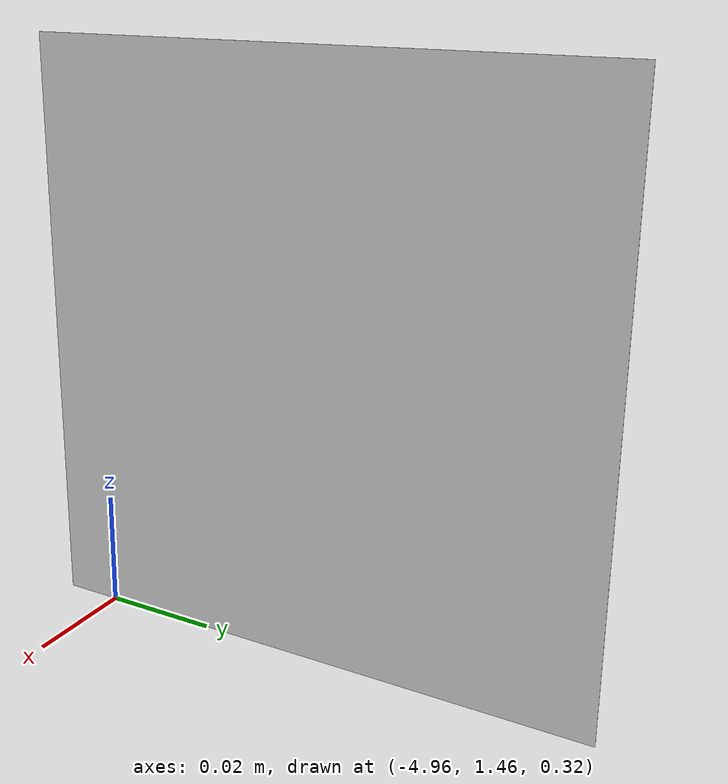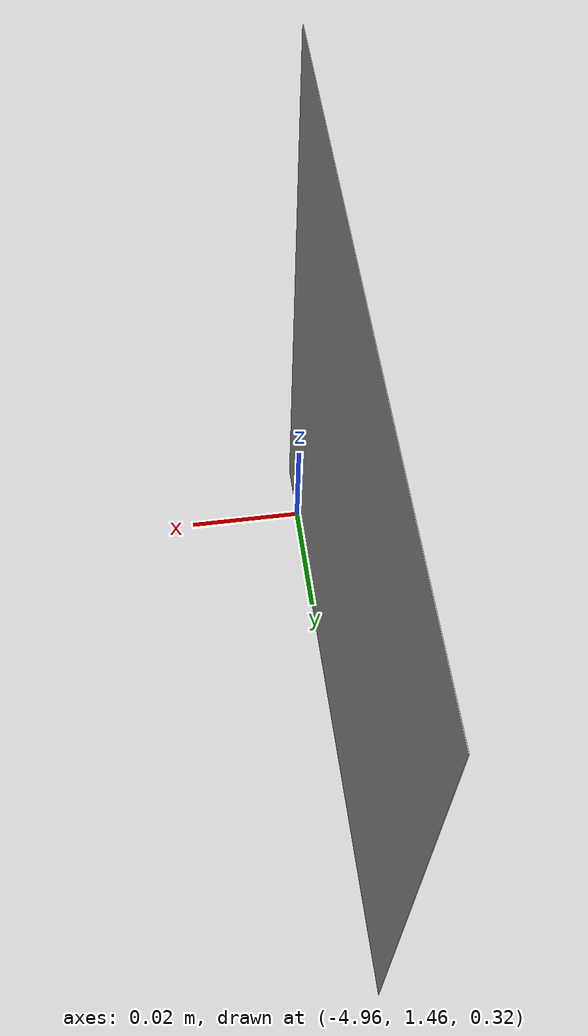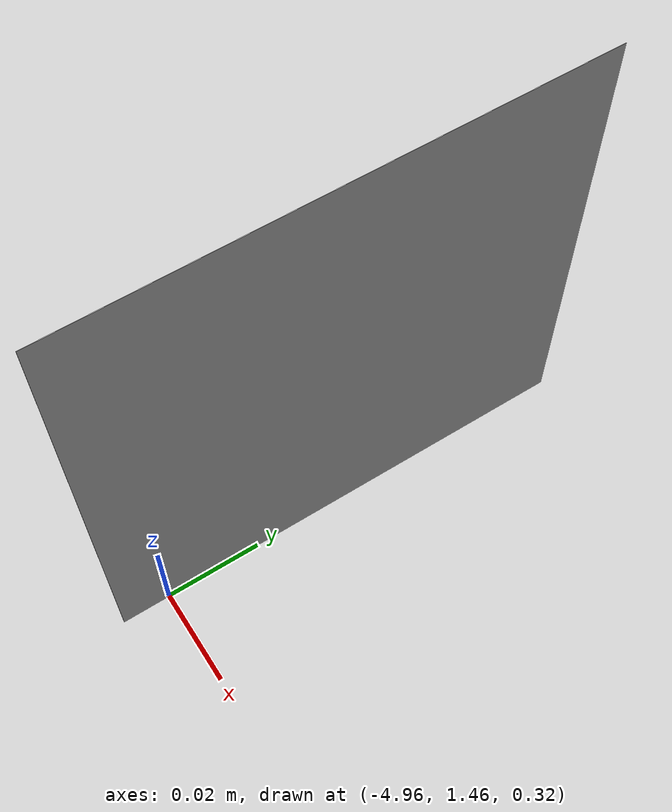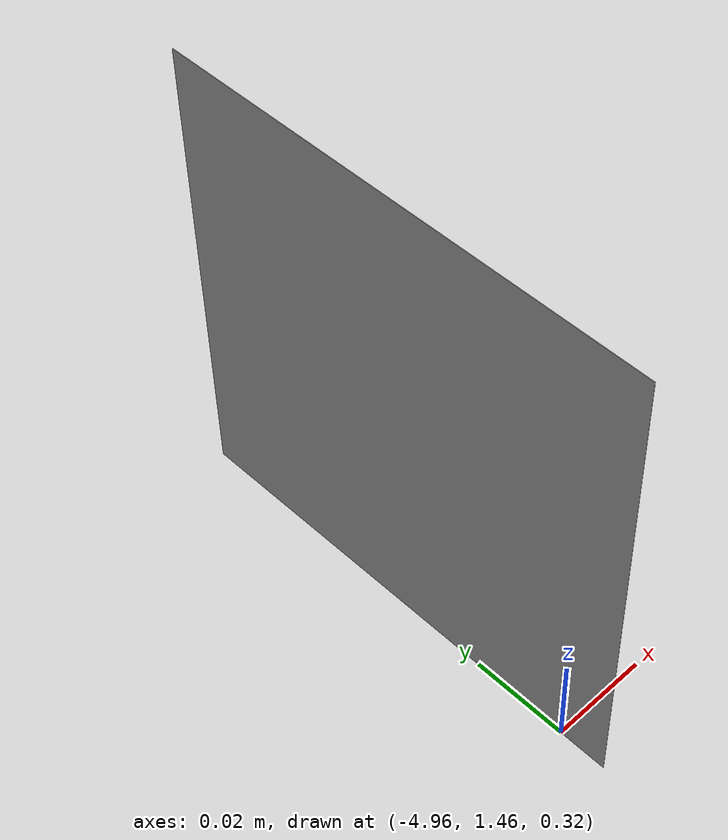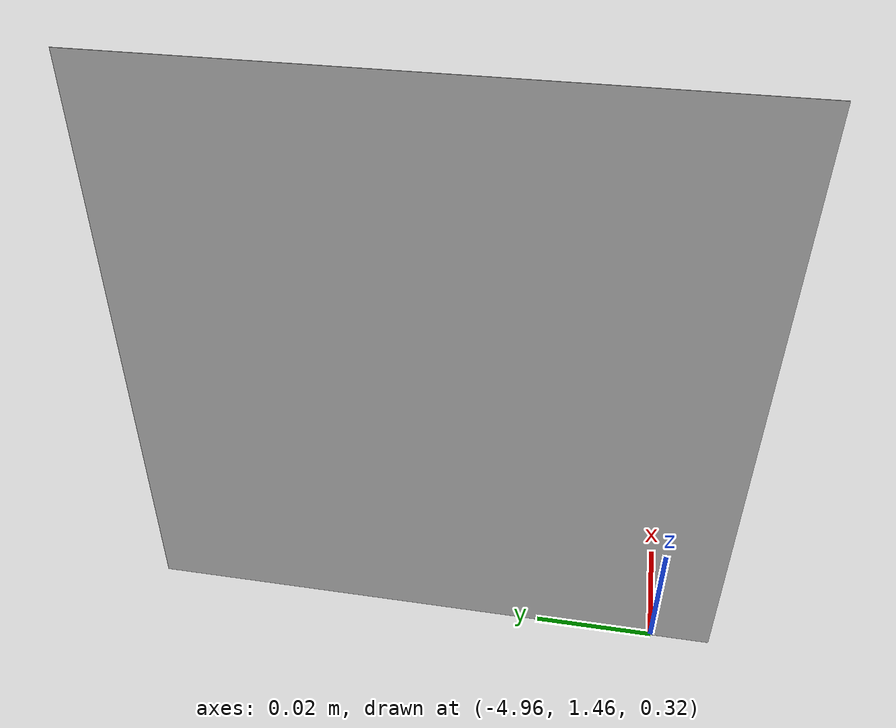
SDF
<sdf version="1.6">
  <world name="empty">
    <physics name="1ms" type="ignored">
      <max_step_size>0.001</max_step_size>
      <real_time_factor>1.0</real_time_factor>
    </physics>
    <plugin
      filename="gz-sim-physics-system"
      name="gz::sim::systems::Physics">
    </plugin>
    <plugin
      filename="gz-sim-user-commands-system"
      name="gz::sim::systems::UserCommands">
    </plugin>
    <plugin
      filename="gz-sim-scene-broadcaster-system"
      name="gz::sim::systems::SceneBroadcaster">
    </plugin>
    <plugin
      filename="gz-sim-sensors-system"
      name="gz::sim::systems::Sensors">
      <render_engine>ogre2</render_engine>
    </plugin>
    <plugin
      filename="gz-sim-contact-system"
      name="gz::sim::systems::Contact">
    </plugin>

    <light type="directional" name="sun">
      <cast_shadows>true</cast_shadows>
      <pose>0 0 10 0 0 0</pose>
      <diffuse>0.8 0.8 0.8 1</diffuse>
      <specular>0.2 0.2 0.2 1</specular>
      <attenuation>
        <range>1000</range>
        <constant>0.9</constant>
        <linear>0.01</linear>
        <quadratic>0.001</quadratic>
      </attenuation>
      <direction>-0.5 0.1 -0.9</direction>
    </light>

    <include>
      <name>Apriltag36_11_00000</name>
      <pose>-4.96 1.5 0.37 1.5708 0 1.5708</pose>
      <static>true</static>
      <uri>model://Apriltag36_11_00000</uri>
    </include>

    <model name="ground_plane">
      <static>true</static>
      <link name="link">
        <collision name="collision">
          <geometry>
            <plane>
              <normal>0 0 1</normal>
              <size>100 100</size>
            </plane>
          </geometry>
        </collision>
        <visual name="visual">
          <geometry>
            <plane>
              <normal>0 0 1</normal>
              <size>100 100</size>
            </plane>
          </geometry>
          <material>
            <ambient>0.8 0.8 0.8 1</ambient>
            <diffuse>0.8 0.8 0.8 1</diffuse>
            <specular>0.8 0.8 0.8 1</specular>
          </material>
        </visual>
      </link>
    </model>
  </world>
</sdf>

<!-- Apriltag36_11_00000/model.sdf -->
<sdf version='1.6'>
  <model name='Apriltag36_11_00000'>
    <link name="link">
      <inertial>
        <pose>0 0 0 0 0 0</pose>
        <mass>0.5</mass>
        <inertia>
          <ixx>0.0001</ixx>
          <ixy>0</ixy>
          <ixz>0</ixz>
          <iyy>0.0001</iyy>
          <iyz>0</iyz>
          <izz>0.0001</izz>
        </inertia>
      </inertial>
      <collision name="collision">
        <pose>0 0 0 0 0 0</pose>
        <geometry>
          <mesh>
            <uri>model://Apriltag36_11_00000/meshes/tag36_11_00000.dae</uri>
          </mesh>
        </geometry>
        <surface>
          <friction>
            <ode>
              <mu>1.0</mu>
              <mu2>1.0</mu2>
            </ode>
          </friction>
          <contact>
            <ode>
              <kp>10000000.0</kp>
              <kd>1.0</kd>
              <min_depth>0.001</min_depth>
              <max_vel>0.1</max_vel>
            </ode>
          </contact>
        </surface>
      </collision>
      <visual name="visual">
        <pose>0 0 0 0 0 0</pose>
        <geometry>
          <mesh>
            <uri>model://Apriltag36_11_00000/meshes/tag36_11_00000.dae</uri>
          </mesh>
        </geometry>
      </visual>
    </link>
  </model>
</sdf>
